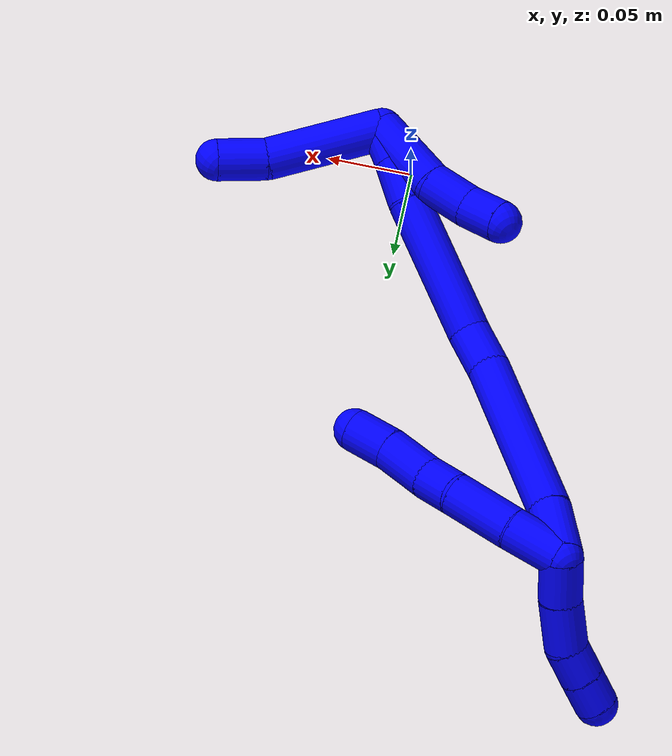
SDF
<sdf version="1.7">
 <world name="default">
  <model name="1">
   <static>0</static>
   <link name="1">
    <collision name="collision-cylinder-e_1_2_8">
     <pose>0.006815 7e-05 -0.014441 -3.13671 0.440934 -3.11982</pose>
     <geometry><cylinder><radius>0.0125</radius><length>0.031937</length></cylinder></geometry>
     <surface>
      <friction><ode><mu>1.16</mu><mu2>1.16</mu2><slip1>0</slip1><slip2>0</slip2></ode></friction>
      <contact><ode><kp>1e+06</kp><kd>1</kd><max_vel>0</max_vel><min_depth>0.001</min_depth></ode></contact>
     </surface>
    </collision>
    <visual name="visual-cylinder-e_1_2_8">
     <pose>0.006815 7e-05 -0.014441 -3.13671 0.440934 -3.11982</pose>
     <geometry><cylinder><radius>0.0125</radius><length>0.031937</length></cylinder></geometry>
     <material><ambient>0 0 1 1</ambient></material>
    </visual>
    <collision name="collision-cylinder-e_2_8_9">
     <pose>0.020682 0.001357 -0.047764 -3.07727 0.356748 -2.7884</pose>
     <geometry><cylinder><radius>0.0125</radius><length>0.040386</length></cylinder></geometry>
     <surface>
      <friction><ode><mu>1.16</mu><mu2>1.16</mu2><slip1>0</slip1><slip2>0</slip2></ode></friction>
      <contact><ode><kp>1e+06</kp><kd>1</kd><max_vel>0</max_vel><min_depth>0.001</min_depth></ode></contact>
     </surface>
    </collision>
    <visual name="visual-cylinder-e_2_8_9">
     <pose>0.020682 0.001357 -0.047764 -3.07727 0.356748 -2.7884</pose>
     <geometry><cylinder><radius>0.0125</radius><length>0.040386</length></cylinder></geometry>
     <material><ambient>0 0 1 1</ambient></material>
    </visual>
    <collision name="collision-cylinder-e_3_9_10">
     <pose>0.030269 0.004934 -0.076954 -2.91652 0.235266 -1.61546</pose>
     <geometry><cylinder><radius>0.0125</radius><length>0.021748</length></cylinder></geometry>
     <surface>
      <friction><ode><mu>1.16</mu><mu2>1.16</mu2><slip1>0</slip1><slip2>0</slip2></ode></friction>
      <contact><ode><kp>1e+06</kp><kd>1</kd><max_vel>0</max_vel><min_depth>0.001</min_depth></ode></contact>
     </surface>
    </collision>
    <visual name="visual-cylinder-e_3_9_10">
     <pose>0.030269 0.004934 -0.076954 -2.91652 0.235266 -1.61546</pose>
     <geometry><cylinder><radius>0.0125</radius><length>0.021748</length></cylinder></geometry>
     <material><ambient>0 0 1 1</ambient></material>
    </visual>
    <collision name="collision-cylinder-e_4_10_11">
     <pose>0.036464 0.008265 -0.101831 -3.07503 0.245622 -2.61465</pose>
     <geometry><cylinder><radius>0.0125</radius><length>0.030105</length></cylinder></geometry>
     <surface>
      <friction><ode><mu>1.16</mu><mu2>1.16</mu2><slip1>0</slip1><slip2>0</slip2></ode></friction>
      <contact><ode><kp>1e+06</kp><kd>1</kd><max_vel>0</max_vel><min_depth>0.001</min_depth></ode></contact>
     </surface>
    </collision>
    <visual name="visual-cylinder-e_4_10_11">
     <pose>0.036464 0.008265 -0.101831 -3.07503 0.245622 -2.61465</pose>
     <geometry><cylinder><radius>0.0125</radius><length>0.030105</length></cylinder></geometry>
     <material><ambient>0 0 1 1</ambient></material>
    </visual>
    <collision name="collision-cylinder-e_5_11_6">
     <pose>0.044853 0.010505 -0.128347 -3.03574 0.374986 -2.59703</pose>
     <geometry><cylinder><radius>0.0125</radius><length>0.025824</length></cylinder></geometry>
     <surface>
      <friction><ode><mu>1.16</mu><mu2>1.16</mu2><slip1>0</slip1><slip2>0</slip2></ode></friction>
      <contact><ode><kp>1e+06</kp><kd>1</kd><max_vel>0</max_vel><min_depth>0.001</min_depth></ode></contact>
     </surface>
    </collision>
    <visual name="visual-cylinder-e_5_11_6">
     <pose>0.044853 0.010505 -0.128347 -3.03574 0.374986 -2.59703</pose>
     <geometry><cylinder><radius>0.0125</radius><length>0.025824</length></cylinder></geometry>
     <material><ambient>0 0 1 1</ambient></material>
    </visual>
    <collision name="collision-cylinder-e_1_2_12">
     <pose>0.001063 0.01282 0.004372 -1.2421 0.078326 -0.056056</pose>
     <geometry><cylinder><radius>0.0125</radius><length>0.027174</length></cylinder></geometry>
     <surface>
      <friction><ode><mu>1.16</mu><mu2>1.16</mu2><slip1>0</slip1><slip2>0</slip2></ode></friction>
      <contact><ode><kp>1e+06</kp><kd>1</kd><max_vel>0</max_vel><min_depth>0.001</min_depth></ode></contact>
     </surface>
    </collision>
    <visual name="visual-cylinder-e_1_2_12">
     <pose>0.001063 0.01282 0.004372 -1.2421 0.078326 -0.056056</pose>
     <geometry><cylinder><radius>0.0125</radius><length>0.027174</length></cylinder></geometry>
     <material><ambient>0 0 1 1</ambient></material>
    </visual>
    <collision name="collision-cylinder-e_2_12_13">
     <pose>0.002004 0.039706 0.015026 -1.15079 -0.007917 0.005135</pose>
     <geometry><cylinder><radius>0.0125</radius><length>0.03081</length></cylinder></geometry>
     <surface>
      <friction><ode><mu>1.16</mu><mu2>1.16</mu2><slip1>0</slip1><slip2>0</slip2></ode></friction>
      <contact><ode><kp>1e+06</kp><kd>1</kd><max_vel>0</max_vel><min_depth>0.001</min_depth></ode></contact>
     </surface>
    </collision>
    <visual name="visual-cylinder-e_2_12_13">
     <pose>0.002004 0.039706 0.015026 -1.15079 -0.007917 0.005135</pose>
     <geometry><cylinder><radius>0.0125</radius><length>0.03081</length></cylinder></geometry>
     <material><ambient>0 0 1 1</ambient></material>
    </visual>
    <collision name="collision-cylinder-e_3_13_14">
     <pose>-0.001006 0.062426 0.026963 -0.992019 -0.272428 0.148067</pose>
     <geometry><cylinder><radius>0.0125</radius><length>0.021468</length></cylinder></geometry>
     <surface>
      <friction><ode><mu>1.16</mu><mu2>1.16</mu2><slip1>0</slip1><slip2>0</slip2></ode></friction>
      <contact><ode><kp>1e+06</kp><kd>1</kd><max_vel>0</max_vel><min_depth>0.001</min_depth></ode></contact>
     </surface>
    </collision>
    <visual name="visual-cylinder-e_3_13_14">
     <pose>-0.001006 0.062426 0.026963 -0.992019 -0.272428 0.148067</pose>
     <geometry><cylinder><radius>0.0125</radius><length>0.021468</length></cylinder></geometry>
     <material><ambient>0 0 1 1</ambient></material>
    </visual>
    <collision name="collision-cylinder-e_4_14_5">
     <pose>-0.006786 0.079346 0.037992 -0.994302 -0.285288 0.155544</pose>
     <geometry><cylinder><radius>0.0125</radius><length>0.020548</length></cylinder></geometry>
     <surface>
      <friction><ode><mu>1.16</mu><mu2>1.16</mu2><slip1>0</slip1><slip2>0</slip2></ode></friction>
      <contact><ode><kp>1e+06</kp><kd>1</kd><max_vel>0</max_vel><min_depth>0.001</min_depth></ode></contact>
     </surface>
    </collision>
    <visual name="visual-cylinder-e_4_14_5">
     <pose>-0.006786 0.079346 0.037992 -0.994302 -0.285288 0.155544</pose>
     <geometry><cylinder><radius>0.0125</radius><length>0.020548</length></cylinder></geometry>
     <material><ambient>0 0 1 1</ambient></material>
    </visual>
    <collision name="collision-cylinder-e_1_2_15">
     <pose>-0.005805 -0.000931 -0.015453 3.08144 -0.358739 -2.81272</pose>
     <geometry><cylinder><radius>0.0125</radius><length>0.033067</length></cylinder></geometry>
     <surface>
      <friction><ode><mu>1.16</mu><mu2>1.16</mu2><slip1>0</slip1><slip2>0</slip2></ode></friction>
      <contact><ode><kp>1e+06</kp><kd>1</kd><max_vel>0</max_vel><min_depth>0.001</min_depth></ode></contact>
     </surface>
    </collision>
    <visual name="visual-cylinder-e_1_2_15">
     <pose>-0.005805 -0.000931 -0.015453 3.08144 -0.358739 -2.81272</pose>
     <geometry><cylinder><radius>0.0125</radius><length>0.033067</length></cylinder></geometry>
     <material><ambient>0 0 1 1</ambient></material>
    </visual>
    <collision name="collision-cylinder-e_2_15_16">
     <pose>-0.02283 -0.004625 -0.082101 3.08767 -0.215453 -2.65285</pose>
     <geometry><cylinder><radius>0.0125</radius><length>0.104966</length></cylinder></geometry>
     <surface>
      <friction><ode><mu>1.16</mu><mu2>1.16</mu2><slip1>0</slip1><slip2>0</slip2></ode></friction>
      <contact><ode><kp>1e+06</kp><kd>1</kd><max_vel>0</max_vel><min_depth>0.001</min_depth></ode></contact>
     </surface>
    </collision>
    <visual name="visual-cylinder-e_2_15_16">
     <pose>-0.02283 -0.004625 -0.082101 3.08767 -0.215453 -2.65285</pose>
     <geometry><cylinder><radius>0.0125</radius><length>0.104966</length></cylinder></geometry>
     <material><ambient>0 0 1 1</ambient></material>
    </visual>
    <collision name="collision-cylinder-e_3_16_17">
     <pose>-0.035182 -0.009597 -0.146752 2.97887 -0.082822 -0.940277</pose>
     <geometry><cylinder><radius>0.0125</radius><length>0.027365</length></cylinder></geometry>
     <surface>
      <friction><ode><mu>1.16</mu><mu2>1.16</mu2><slip1>0</slip1><slip2>0</slip2></ode></friction>
      <contact><ode><kp>1e+06</kp><kd>1</kd><max_vel>0</max_vel><min_depth>0.001</min_depth></ode></contact>
     </surface>
    </collision>
    <visual name="visual-cylinder-e_3_16_17">
     <pose>-0.035182 -0.009597 -0.146752 2.97887 -0.082822 -0.940277</pose>
     <geometry><cylinder><radius>0.0125</radius><length>0.027365</length></cylinder></geometry>
     <material><ambient>0 0 1 1</ambient></material>
    </visual>
    <collision name="collision-cylinder-e_4_17_18">
     <pose>-0.036718 -0.030428 -0.198703 2.69102 -0.009438 -0.041179</pose>
     <geometry><cylinder><radius>0.0125</radius><length>0.085532</length></cylinder></geometry>
     <surface>
      <friction><ode><mu>1.16</mu><mu2>1.16</mu2><slip1>0</slip1><slip2>0</slip2></ode></friction>
      <contact><ode><kp>1e+06</kp><kd>1</kd><max_vel>0</max_vel><min_depth>0.001</min_depth></ode></contact>
     </surface>
    </collision>
    <visual name="visual-cylinder-e_4_17_18">
     <pose>-0.036718 -0.030428 -0.198703 2.69102 -0.009438 -0.041179</pose>
     <geometry><cylinder><radius>0.0125</radius><length>0.085532</length></cylinder></geometry>
     <material><ambient>0 0 1 1</ambient></material>
    </visual>
    <collision name="collision-cylinder-e_5_18_19">
     <pose>-0.038938 -0.054391 -0.249311 2.7263 -0.136372 -0.626926</pose>
     <geometry><cylinder><radius>0.0125</radius><length>0.026721</length></cylinder></geometry>
     <surface>
      <friction><ode><mu>1.16</mu><mu2>1.16</mu2><slip1>0</slip1><slip2>0</slip2></ode></friction>
      <contact><ode><kp>1e+06</kp><kd>1</kd><max_vel>0</max_vel><min_depth>0.001</min_depth></ode></contact>
     </surface>
    </collision>
    <visual name="visual-cylinder-e_5_18_19">
     <pose>-0.038938 -0.054391 -0.249311 2.7263 -0.136372 -0.626926</pose>
     <geometry><cylinder><radius>0.0125</radius><length>0.026721</length></cylinder></geometry>
     <material><ambient>0 0 1 1</ambient></material>
    </visual>
    <collision name="collision-cylinder-e_6_19_1">
     <pose>-0.041743 -0.063685 -0.271827 2.77853 -0.088566 -0.473758</pose>
     <geometry><cylinder><radius>0.0125</radius><length>0.022349</length></cylinder></geometry>
     <surface>
      <friction><ode><mu>1.16</mu><mu2>1.16</mu2><slip1>0</slip1><slip2>0</slip2></ode></friction>
      <contact><ode><kp>1e+06</kp><kd>1</kd><max_vel>0</max_vel><min_depth>0.001</min_depth></ode></contact>
     </surface>
    </collision>
    <visual name="visual-cylinder-e_6_19_1">
     <pose>-0.041743 -0.063685 -0.271827 2.77853 -0.088566 -0.473758</pose>
     <geometry><cylinder><radius>0.0125</radius><length>0.022349</length></cylinder></geometry>
     <material><ambient>0 0 1 1</ambient></material>
    </visual>
    <collision name="collision-cylinder-e_1_1_20">
     <pose>-0.045527 -0.065529 -0.257876 -0.086354 -0.113898 0.004926</pose>
     <geometry><cylinder><radius>0.0125</radius><length>0.049213</length></cylinder></geometry>
     <surface>
      <friction><ode><mu>1.16</mu><mu2>1.16</mu2><slip1>0</slip1><slip2>0</slip2></ode></friction>
      <contact><ode><kp>1e+06</kp><kd>1</kd><max_vel>0</max_vel><min_depth>0.001</min_depth></ode></contact>
     </surface>
    </collision>
    <visual name="visual-cylinder-e_1_1_20">
     <pose>-0.045527 -0.065529 -0.257876 -0.086354 -0.113898 0.004926</pose>
     <geometry><cylinder><radius>0.0125</radius><length>0.049213</length></cylinder></geometry>
     <material><ambient>0 0 1 1</ambient></material>
    </visual>
    <collision name="collision-cylinder-e_2_20_21">
     <pose>-0.053507 -0.0628 -0.22091 -0.049154 -0.389509 0.009698</pose>
     <geometry><cylinder><radius>0.0125</radius><length>0.027296</length></cylinder></geometry>
     <surface>
      <friction><ode><mu>1.16</mu><mu2>1.16</mu2><slip1>0</slip1><slip2>0</slip2></ode></friction>
      <contact><ode><kp>1e+06</kp><kd>1</kd><max_vel>0</max_vel><min_depth>0.001</min_depth></ode></contact>
     </surface>
    </collision>
    <visual name="visual-cylinder-e_2_20_21">
     <pose>-0.053507 -0.0628 -0.22091 -0.049154 -0.389509 0.009698</pose>
     <geometry><cylinder><radius>0.0125</radius><length>0.027296</length></cylinder></geometry>
     <material><ambient>0 0 1 1</ambient></material>
    </visual>
    <collision name="collision-cylinder-e_3_21_4">
     <pose>-0.062646 -0.064009 -0.197393 0.166172 -0.343572 -0.028895</pose>
     <geometry><cylinder><radius>0.0125</radius><length>0.023491</length></cylinder></geometry>
     <surface>
      <friction><ode><mu>1.16</mu><mu2>1.16</mu2><slip1>0</slip1><slip2>0</slip2></ode></friction>
      <contact><ode><kp>1e+06</kp><kd>1</kd><max_vel>0</max_vel><min_depth>0.001</min_depth></ode></contact>
     </surface>
    </collision>
    <visual name="visual-cylinder-e_3_21_4">
     <pose>-0.062646 -0.064009 -0.197393 0.166172 -0.343572 -0.028895</pose>
     <geometry><cylinder><radius>0.0125</radius><length>0.023491</length></cylinder></geometry>
     <material><ambient>0 0 1 1</ambient></material>
    </visual>
    <collision name="collision-cylinder-e_1_1_22">
     <pose>-0.00985 -0.059947 -0.292113 -2.48018 1.20696 -2.21735</pose>
     <geometry><cylinder><radius>0.0125</radius><length>0.070368</length></cylinder></geometry>
     <surface>
      <friction><ode><mu>1.16</mu><mu2>1.16</mu2><slip1>0</slip1><slip2>0</slip2></ode></friction>
      <contact><ode><kp>1e+06</kp><kd>1</kd><max_vel>0</max_vel><min_depth>0.001</min_depth></ode></contact>
     </surface>
    </collision>
    <visual name="visual-cylinder-e_1_1_22">
     <pose>-0.00985 -0.059947 -0.292113 -2.48018 1.20696 -2.21735</pose>
     <geometry><cylinder><radius>0.0125</radius><length>0.070368</length></cylinder></geometry>
     <material><ambient>0 0 1 1</ambient></material>
    </visual>
    <collision name="collision-cylinder-e_2_22_3">
     <pose>0.036567 -0.052107 -0.308016 -3.11668 1.15202 -3.10324</pose>
     <geometry><cylinder><radius>0.0125</radius><length>0.029632</length></cylinder></geometry>
     <surface>
      <friction><ode><mu>1.16</mu><mu2>1.16</mu2><slip1>0</slip1><slip2>0</slip2></ode></friction>
      <contact><ode><kp>1e+06</kp><kd>1</kd><max_vel>0</max_vel><min_depth>0.001</min_depth></ode></contact>
     </surface>
    </collision>
    <visual name="visual-cylinder-e_2_22_3">
     <pose>0.036567 -0.052107 -0.308016 -3.11668 1.15202 -3.10324</pose>
     <geometry><cylinder><radius>0.0125</radius><length>0.029632</length></cylinder></geometry>
     <material><ambient>0 0 1 1</ambient></material>
    </visual>
    <collision name="collision-sphere-3">
     <pose>0.050102 -0.051957 -0.314039 0 -0 0</pose>
     <geometry><sphere><radius>0.0125</radius></sphere></geometry>
     <surface>
      <friction><ode><mu>1.16</mu><mu2>1.16</mu2><slip1>0</slip1><slip2>0</slip2></ode></friction>
      <contact><ode><kp>1e+06</kp><kd>1</kd><max_vel>0</max_vel><min_depth>0.001</min_depth></ode></contact>
     </surface>
    </collision>
    <visual name="visual-sphere-3">
     <pose>0.050102 -0.051957 -0.314039 0 -0 0</pose>
     <geometry><sphere><radius>0.0125</radius></sphere></geometry>
     <material><ambient>0 0 1 1</ambient></material>
    </visual>
    <collision name="collision-sphere-22">
     <pose>0.023031 -0.052257 -0.301993 0 -0 0</pose>
     <geometry><sphere><radius>0.0125</radius></sphere></geometry>
     <surface>
      <friction><ode><mu>1.16</mu><mu2>1.16</mu2><slip1>0</slip1><slip2>0</slip2></ode></friction>
      <contact><ode><kp>1e+06</kp><kd>1</kd><max_vel>0</max_vel><min_depth>0.001</min_depth></ode></contact>
     </surface>
    </collision>
    <visual name="visual-sphere-22">
     <pose>0.023031 -0.052257 -0.301993 0 -0 0</pose>
     <geometry><sphere><radius>0.0125</radius></sphere></geometry>
     <material><ambient>0 0 1 1</ambient></material>
    </visual>
    <collision name="collision-sphere-4">
     <pose>-0.066602 -0.065839 -0.186486 0 -0 0</pose>
     <geometry><sphere><radius>0.0125</radius></sphere></geometry>
     <surface>
      <friction><ode><mu>1.16</mu><mu2>1.16</mu2><slip1>0</slip1><slip2>0</slip2></ode></friction>
      <contact><ode><kp>1e+06</kp><kd>1</kd><max_vel>0</max_vel><min_depth>0.001</min_depth></ode></contact>
     </surface>
    </collision>
    <visual name="visual-sphere-4">
     <pose>-0.066602 -0.065839 -0.186486 0 -0 0</pose>
     <geometry><sphere><radius>0.0125</radius></sphere></geometry>
     <material><ambient>0 0 1 1</ambient></material>
    </visual>
    <collision name="collision-sphere-21">
     <pose>-0.058689 -0.06218 -0.2083 0 -0 0</pose>
     <geometry><sphere><radius>0.0125</radius></sphere></geometry>
     <surface>
      <friction><ode><mu>1.16</mu><mu2>1.16</mu2><slip1>0</slip1><slip2>0</slip2></ode></friction>
      <contact><ode><kp>1e+06</kp><kd>1</kd><max_vel>0</max_vel><min_depth>0.001</min_depth></ode></contact>
     </surface>
    </collision>
    <visual name="visual-sphere-21">
     <pose>-0.058689 -0.06218 -0.2083 0 -0 0</pose>
     <geometry><sphere><radius>0.0125</radius></sphere></geometry>
     <material><ambient>0 0 1 1</ambient></material>
    </visual>
    <collision name="collision-sphere-20">
     <pose>-0.048324 -0.063421 -0.233521 0 -0 0</pose>
     <geometry><sphere><radius>0.0125</radius></sphere></geometry>
     <surface>
      <friction><ode><mu>1.16</mu><mu2>1.16</mu2><slip1>0</slip1><slip2>0</slip2></ode></friction>
      <contact><ode><kp>1e+06</kp><kd>1</kd><max_vel>0</max_vel><min_depth>0.001</min_depth></ode></contact>
     </surface>
    </collision>
    <visual name="visual-sphere-20">
     <pose>-0.048324 -0.063421 -0.233521 0 -0 0</pose>
     <geometry><sphere><radius>0.0125</radius></sphere></geometry>
     <material><ambient>0 0 1 1</ambient></material>
    </visual>
    <collision name="collision-sphere-6">
     <pose>0.049582 0.011775 -0.140294 0 -0 0</pose>
     <geometry><sphere><radius>0.0125</radius></sphere></geometry>
     <surface>
      <friction><ode><mu>1.16</mu><mu2>1.16</mu2><slip1>0</slip1><slip2>0</slip2></ode></friction>
      <contact><ode><kp>1e+06</kp><kd>1</kd><max_vel>0</max_vel><min_depth>0.001</min_depth></ode></contact>
     </surface>
    </collision>
    <visual name="visual-sphere-6">
     <pose>0.049582 0.011775 -0.140294 0 -0 0</pose>
     <geometry><sphere><radius>0.0125</radius></sphere></geometry>
     <material><ambient>0 0 1 1</ambient></material>
    </visual>
    <collision name="collision-sphere-11">
     <pose>0.040124 0.009236 -0.116399 0 -0 0</pose>
     <geometry><sphere><radius>0.0125</radius></sphere></geometry>
     <surface>
      <friction><ode><mu>1.16</mu><mu2>1.16</mu2><slip1>0</slip1><slip2>0</slip2></ode></friction>
      <contact><ode><kp>1e+06</kp><kd>1</kd><max_vel>0</max_vel><min_depth>0.001</min_depth></ode></contact>
     </surface>
    </collision>
    <visual name="visual-sphere-11">
     <pose>0.040124 0.009236 -0.116399 0 -0 0</pose>
     <geometry><sphere><radius>0.0125</radius></sphere></geometry>
     <material><ambient>0 0 1 1</ambient></material>
    </visual>
    <collision name="collision-sphere-10">
     <pose>0.032804 0.007294 -0.087262 0 -0 0</pose>
     <geometry><sphere><radius>0.0125</radius></sphere></geometry>
     <surface>
      <friction><ode><mu>1.16</mu><mu2>1.16</mu2><slip1>0</slip1><slip2>0</slip2></ode></friction>
      <contact><ode><kp>1e+06</kp><kd>1</kd><max_vel>0</max_vel><min_depth>0.001</min_depth></ode></contact>
     </surface>
    </collision>
    <visual name="visual-sphere-10">
     <pose>0.032804 0.007294 -0.087262 0 -0 0</pose>
     <geometry><sphere><radius>0.0125</radius></sphere></geometry>
     <material><ambient>0 0 1 1</ambient></material>
    </visual>
    <collision name="collision-sphere-9">
     <pose>0.027734 0.002573 -0.066647 0 -0 0</pose>
     <geometry><sphere><radius>0.0125</radius></sphere></geometry>
     <surface>
      <friction><ode><mu>1.16</mu><mu2>1.16</mu2><slip1>0</slip1><slip2>0</slip2></ode></friction>
      <contact><ode><kp>1e+06</kp><kd>1</kd><max_vel>0</max_vel><min_depth>0.001</min_depth></ode></contact>
     </surface>
    </collision>
    <visual name="visual-sphere-9">
     <pose>0.027734 0.002573 -0.066647 0 -0 0</pose>
     <geometry><sphere><radius>0.0125</radius></sphere></geometry>
     <material><ambient>0 0 1 1</ambient></material>
    </visual>
    <collision name="collision-sphere-2">
     <geometry><sphere><radius>0.0125</radius></sphere></geometry>
     <surface>
      <friction><ode><mu>1.16</mu><mu2>1.16</mu2><slip1>0</slip1><slip2>0</slip2></ode></friction>
      <contact><ode><kp>1e+06</kp><kd>1</kd><max_vel>0</max_vel><min_depth>0.001</min_depth></ode></contact>
     </surface>
    </collision>
    <visual name="visual-sphere-2">
     <geometry><sphere><radius>0.0125</radius></sphere></geometry>
     <material><ambient>0 0 1 1</ambient></material>
    </visual>
    <collision name="collision-sphere-19">
     <pose>-0.040754 -0.059732 -0.261422 0 -0 0</pose>
     <geometry><sphere><radius>0.0125</radius></sphere></geometry>
     <surface>
      <friction><ode><mu>1.16</mu><mu2>1.16</mu2><slip1>0</slip1><slip2>0</slip2></ode></friction>
      <contact><ode><kp>1e+06</kp><kd>1</kd><max_vel>0</max_vel><min_depth>0.001</min_depth></ode></contact>
     </surface>
    </collision>
    <visual name="visual-sphere-19">
     <pose>-0.040754 -0.059732 -0.261422 0 -0 0</pose>
     <geometry><sphere><radius>0.0125</radius></sphere></geometry>
     <material><ambient>0 0 1 1</ambient></material>
    </visual>
    <collision name="collision-sphere-8">
     <pose>0.01363 0.000141 -0.028882 0 -0 0</pose>
     <geometry><sphere><radius>0.0125</radius></sphere></geometry>
     <surface>
      <friction><ode><mu>1.16</mu><mu2>1.16</mu2><slip1>0</slip1><slip2>0</slip2></ode></friction>
      <contact><ode><kp>1e+06</kp><kd>1</kd><max_vel>0</max_vel><min_depth>0.001</min_depth></ode></contact>
     </surface>
    </collision>
    <visual name="visual-sphere-8">
     <pose>0.01363 0.000141 -0.028882 0 -0 0</pose>
     <geometry><sphere><radius>0.0125</radius></sphere></geometry>
     <material><ambient>0 0 1 1</ambient></material>
    </visual>
    <collision name="collision-sphere-12">
     <pose>0.002126 0.02564 0.008745 0 -0 0</pose>
     <geometry><sphere><radius>0.0125</radius></sphere></geometry>
     <surface>
      <friction><ode><mu>1.16</mu><mu2>1.16</mu2><slip1>0</slip1><slip2>0</slip2></ode></friction>
      <contact><ode><kp>1e+06</kp><kd>1</kd><max_vel>0</max_vel><min_depth>0.001</min_depth></ode></contact>
     </surface>
    </collision>
    <visual name="visual-sphere-12">
     <pose>0.002126 0.02564 0.008745 0 -0 0</pose>
     <geometry><sphere><radius>0.0125</radius></sphere></geometry>
     <material><ambient>0 0 1 1</ambient></material>
    </visual>
    <collision name="collision-sphere-13">
     <pose>0.001882 0.053771 0.021308 0 -0 0</pose>
     <geometry><sphere><radius>0.0125</radius></sphere></geometry>
     <surface>
      <friction><ode><mu>1.16</mu><mu2>1.16</mu2><slip1>0</slip1><slip2>0</slip2></ode></friction>
      <contact><ode><kp>1e+06</kp><kd>1</kd><max_vel>0</max_vel><min_depth>0.001</min_depth></ode></contact>
     </surface>
    </collision>
    <visual name="visual-sphere-13">
     <pose>0.001882 0.053771 0.021308 0 -0 0</pose>
     <geometry><sphere><radius>0.0125</radius></sphere></geometry>
     <material><ambient>0 0 1 1</ambient></material>
    </visual>
    <collision name="collision-sphere-14">
     <pose>-0.003894 0.07108 0.032618 0 -0 0</pose>
     <geometry><sphere><radius>0.0125</radius></sphere></geometry>
     <surface>
      <friction><ode><mu>1.16</mu><mu2>1.16</mu2><slip1>0</slip1><slip2>0</slip2></ode></friction>
      <contact><ode><kp>1e+06</kp><kd>1</kd><max_vel>0</max_vel><min_depth>0.001</min_depth></ode></contact>
     </surface>
    </collision>
    <visual name="visual-sphere-14">
     <pose>-0.003894 0.07108 0.032618 0 -0 0</pose>
     <geometry><sphere><radius>0.0125</radius></sphere></geometry>
     <material><ambient>0 0 1 1</ambient></material>
    </visual>
    <collision name="collision-sphere-5">
     <pose>-0.009677 0.087611 0.043366 0 -0 0</pose>
     <geometry><sphere><radius>0.0125</radius></sphere></geometry>
     <surface>
      <friction><ode><mu>1.16</mu><mu2>1.16</mu2><slip1>0</slip1><slip2>0</slip2></ode></friction>
      <contact><ode><kp>1e+06</kp><kd>1</kd><max_vel>0</max_vel><min_depth>0.001</min_depth></ode></contact>
     </surface>
    </collision>
    <visual name="visual-sphere-5">
     <pose>-0.009677 0.087611 0.043366 0 -0 0</pose>
     <geometry><sphere><radius>0.0125</radius></sphere></geometry>
     <material><ambient>0 0 1 1</ambient></material>
    </visual>
    <collision name="collision-sphere-15">
     <pose>-0.01161 -0.001861 -0.030906 0 -0 0</pose>
     <geometry><sphere><radius>0.0125</radius></sphere></geometry>
     <surface>
      <friction><ode><mu>1.16</mu><mu2>1.16</mu2><slip1>0</slip1><slip2>0</slip2></ode></friction>
      <contact><ode><kp>1e+06</kp><kd>1</kd><max_vel>0</max_vel><min_depth>0.001</min_depth></ode></contact>
     </surface>
    </collision>
    <visual name="visual-sphere-15">
     <pose>-0.01161 -0.001861 -0.030906 0 -0 0</pose>
     <geometry><sphere><radius>0.0125</radius></sphere></geometry>
     <material><ambient>0 0 1 1</ambient></material>
    </visual>
    <collision name="collision-sphere-16">
     <pose>-0.03405 -0.007388 -0.133296 0 -0 0</pose>
     <geometry><sphere><radius>0.0125</radius></sphere></geometry>
     <surface>
      <friction><ode><mu>1.16</mu><mu2>1.16</mu2><slip1>0</slip1><slip2>0</slip2></ode></friction>
      <contact><ode><kp>1e+06</kp><kd>1</kd><max_vel>0</max_vel><min_depth>0.001</min_depth></ode></contact>
     </surface>
    </collision>
    <visual name="visual-sphere-16">
     <pose>-0.03405 -0.007388 -0.133296 0 -0 0</pose>
     <geometry><sphere><radius>0.0125</radius></sphere></geometry>
     <material><ambient>0 0 1 1</ambient></material>
    </visual>
    <collision name="collision-sphere-17">
     <pose>-0.036314 -0.011806 -0.160207 0 -0 0</pose>
     <geometry><sphere><radius>0.0125</radius></sphere></geometry>
     <surface>
      <friction><ode><mu>1.16</mu><mu2>1.16</mu2><slip1>0</slip1><slip2>0</slip2></ode></friction>
      <contact><ode><kp>1e+06</kp><kd>1</kd><max_vel>0</max_vel><min_depth>0.001</min_depth></ode></contact>
     </surface>
    </collision>
    <visual name="visual-sphere-17">
     <pose>-0.036314 -0.011806 -0.160207 0 -0 0</pose>
     <geometry><sphere><radius>0.0125</radius></sphere></geometry>
     <material><ambient>0 0 1 1</ambient></material>
    </visual>
    <collision name="collision-sphere-18">
     <pose>-0.037121 -0.049051 -0.237199 0 -0 0</pose>
     <geometry><sphere><radius>0.0125</radius></sphere></geometry>
     <surface>
      <friction><ode><mu>1.16</mu><mu2>1.16</mu2><slip1>0</slip1><slip2>0</slip2></ode></friction>
      <contact><ode><kp>1e+06</kp><kd>1</kd><max_vel>0</max_vel><min_depth>0.001</min_depth></ode></contact>
     </surface>
    </collision>
    <visual name="visual-sphere-18">
     <pose>-0.037121 -0.049051 -0.237199 0 -0 0</pose>
     <geometry><sphere><radius>0.0125</radius></sphere></geometry>
     <material><ambient>0 0 1 1</ambient></material>
    </visual>
    <collision name="collision-sphere-1">
     <pose>-0.042731 -0.067638 -0.282232 0 -0 0</pose>
     <geometry><sphere><radius>0.0125</radius></sphere></geometry>
     <surface>
      <friction><ode><mu>1.16</mu><mu2>1.16</mu2><slip1>0</slip1><slip2>0</slip2></ode></friction>
      <contact><ode><kp>1e+06</kp><kd>1</kd><max_vel>0</max_vel><min_depth>0.001</min_depth></ode></contact>
     </surface>
    </collision>
    <visual name="visual-sphere-1">
     <pose>-0.042731 -0.067638 -0.282232 0 -0 0</pose>
     <geometry><sphere><radius>0.0125</radius></sphere></geometry>
     <material><ambient>0 0 1 1</ambient></material>
    </visual>
    <inertial>
     <pose>-0.012734 -0.017649 -0.139227 0 -0 0</pose>
     <mass>0.75</mass>
     <inertia>
      <ixx>-9.2e-05</ixx>
      <ixy>0</ixy>
      <ixz>0</ixz>
      <iyy>4.2e-05</iyy>
      <iyz>0</iyz>
      <izz>-2.1e-05</izz>
     </inertia>
    </inertial>
   </link>
   <pose>-0.131349 0.221623 0.074144 -1.15816 -0.326781 0.64767</pose>
  </model>
 </world>
</sdf>
